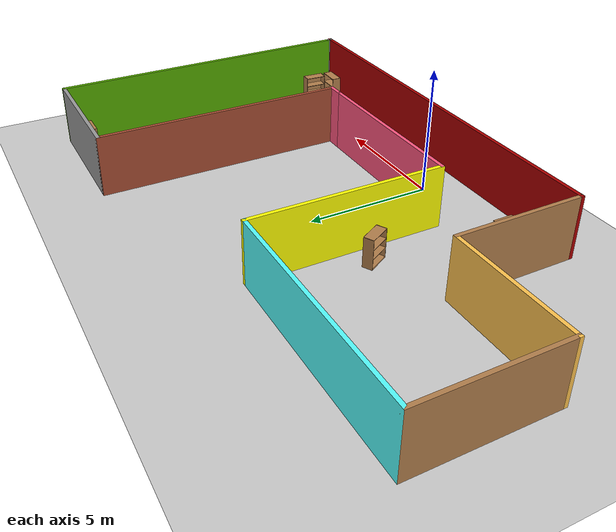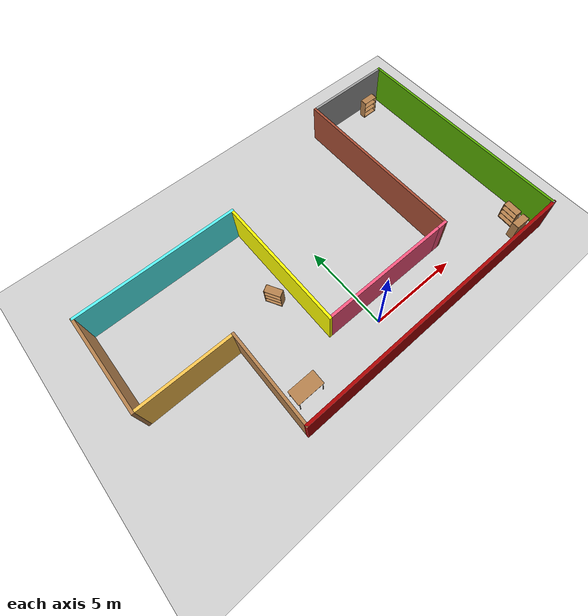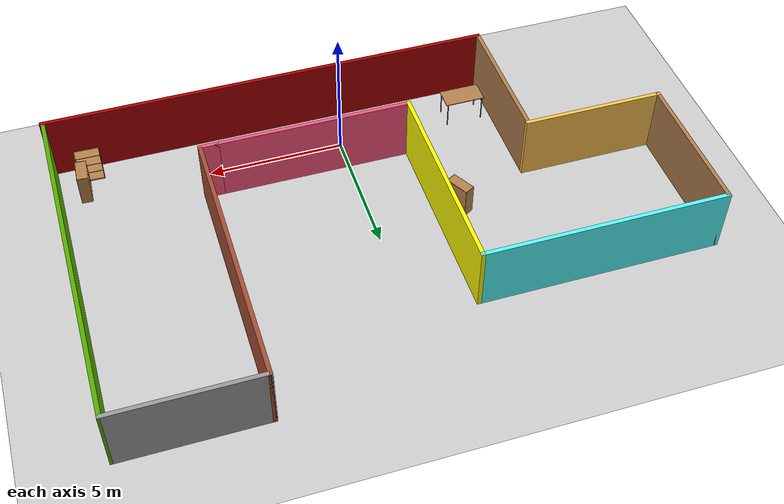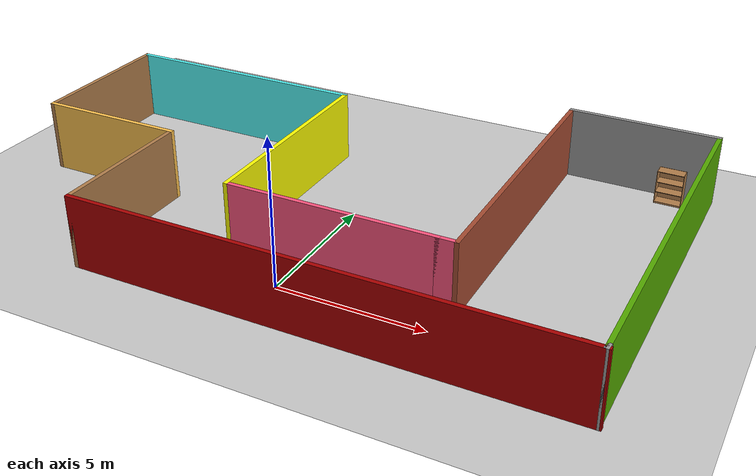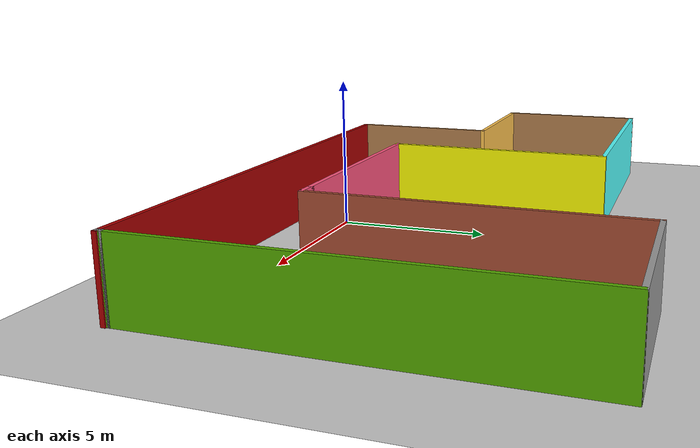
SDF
<sdf version="1.6">
 <world name="default">
  <light name="sun" type="directional">
   <pose>0 0 10 0 -0 0</pose>
   <diffuse>0.8 0.8 0.8 1</diffuse>
   <specular>0.2 0.2 0.2 1</specular>
   <attenuation>
    <range>1000</range>
    <constant>0.9</constant>
    <linear>0.01</linear>
    <quadratic>0.001</quadratic>
   </attenuation>
   <direction>-0.5 0.1 -0.9</direction>
  </light>
  <model name="ground_plane">
   <static>1</static>
   <link name="link">
    <collision name="collision">
     <geometry><plane><normal>0 0 1</normal><size>100 100</size></plane></geometry>
     <surface>
      <contact><collide_bitmask>65535</collide_bitmask></contact>
      <friction><ode><mu>100</mu><mu2>50</mu2></ode></friction>
     </surface>
    </collision>
    <visual name="visual">
     <cast_shadows>0</cast_shadows>
     <geometry><plane><normal>0 0 1</normal><size>100 100</size></plane></geometry>
     <material>
      <script><uri>file://media/materials/scripts/gazebo.material</uri><name>Gazebo/Grey</name></script>
     </material>
    </visual>
   </link>
  </model>
  <gravity>0 0 -9.8</gravity>
  <magnetic_field>6e-06 2.3e-05 -4.2e-05</magnetic_field>
  <atmosphere type="adiabatic"/>
  <physics name="default_physics" default="0" type="ode">
   <max_step_size>0.001</max_step_size>
   <real_time_factor>1</real_time_factor>
   <real_time_update_rate>1000</real_time_update_rate>
  </physics>
  <scene><ambient>0.4 0.4 0.4 1</ambient><background>0.7 0.7 0.7 1</background><shadows>1</shadows></scene>
  <spherical_coordinates>
   <surface_model>EARTH_WGS84</surface_model>
   <latitude_deg>0</latitude_deg>
   <longitude_deg>0</longitude_deg>
   <elevation>0</elevation>
   <heading_deg>0</heading_deg>
  </spherical_coordinates>
  <model name="table">
   <static>1</static>
   <link name="link">
    <collision name="surface">
     <pose>0 0 1 0 -0 0</pose>
     <geometry><box><size>1.5 0.8 0.03</size></box></geometry>
     <surface><friction><ode><mu>0.6</mu><mu2>0.6</mu2></ode></friction></surface>
    </collision>
    <visual name="visual1">
     <pose>0 0 1 0 -0 0</pose>
     <geometry><box><size>1.5 0.8 0.03</size></box></geometry>
     <material>
      <script><uri>file://media/materials/scripts/gazebo.material</uri><name>Gazebo/Wood</name></script>
     </material>
    </visual>
    <collision name="front_left_leg">
     <pose>0.68 0.38 0.5 0 -0 0</pose>
     <geometry><cylinder><radius>0.02</radius><length>1</length></cylinder></geometry>
    </collision>
    <visual name="front_left_leg">
     <pose>0.68 0.38 0.5 0 -0 0</pose>
     <geometry><cylinder><radius>0.02</radius><length>1</length></cylinder></geometry>
     <material>
      <script><uri>file://media/materials/scripts/gazebo.material</uri><name>Gazebo/Grey</name></script>
     </material>
    </visual>
    <collision name="front_right_leg">
     <pose>0.68 -0.38 0.5 0 -0 0</pose>
     <geometry><cylinder><radius>0.02</radius><length>1</length></cylinder></geometry>
    </collision>
    <visual name="front_right_leg">
     <pose>0.68 -0.38 0.5 0 -0 0</pose>
     <geometry><cylinder><radius>0.02</radius><length>1</length></cylinder></geometry>
     <material>
      <script><uri>file://media/materials/scripts/gazebo.material</uri><name>Gazebo/Grey</name></script>
     </material>
    </visual>
    <collision name="back_right_leg">
     <pose>-0.68 -0.38 0.5 0 -0 0</pose>
     <geometry><cylinder><radius>0.02</radius><length>1</length></cylinder></geometry>
    </collision>
    <visual name="back_right_leg">
     <pose>-0.68 -0.38 0.5 0 -0 0</pose>
     <geometry><cylinder><radius>0.02</radius><length>1</length></cylinder></geometry>
     <material>
      <script><uri>file://media/materials/scripts/gazebo.material</uri><name>Gazebo/Grey</name></script>
     </material>
    </visual>
    <collision name="back_left_leg">
     <pose>-0.68 0.38 0.5 0 -0 0</pose>
     <geometry><cylinder><radius>0.02</radius><length>1</length></cylinder></geometry>
    </collision>
    <visual name="back_left_leg">
     <pose>-0.68 0.38 0.5 0 -0 0</pose>
     <geometry><cylinder><radius>0.02</radius><length>1</length></cylinder></geometry>
     <material>
      <script><uri>file://media/materials/scripts/gazebo.material</uri><name>Gazebo/Grey</name></script>
     </material>
    </visual>
   </link>
   <pose>-4.93005 -0.281485 0 0 -0 0</pose>
  </model>
  <model name="bookshelf">
   <static>1</static>
   <link name="link">
    <inertial><mass>1</mass></inertial>
    <collision name="back">
     <pose>0 0.005 0.6 0 -0 0</pose>
     <geometry><box><size>0.9 0.01 1.2</size></box></geometry>
    </collision>
    <visual name="visual1">
     <pose>0 0.005 0.6 0 -0 0</pose>
     <geometry><box><size>0.9 0.01 1.2</size></box></geometry>
     <material>
      <script><uri>file://media/materials/scripts/gazebo.material</uri><name>Gazebo/Wood</name></script>
     </material>
    </visual>
    <collision name="left_side">
     <pose>0.45 -0.195 0.6 0 -0 0</pose>
     <geometry><box><size>0.02 0.4 1.2</size></box></geometry>
    </collision>
    <visual name="visual2">
     <pose>0.45 -0.195 0.6 0 -0 0</pose>
     <geometry><box><size>0.02 0.4 1.2</size></box></geometry>
     <material>
      <script><uri>file://media/materials/scripts/gazebo.material</uri><name>Gazebo/Wood</name></script>
     </material>
    </visual>
    <collision name="right_side">
     <pose>-0.45 -0.195 0.6 0 -0 0</pose>
     <geometry><box><size>0.02 0.4 1.2</size></box></geometry>
    </collision>
    <visual name="visual3">
     <pose>-0.45 -0.195 0.6 0 -0 0</pose>
     <geometry><box><size>0.02 0.4 1.2</size></box></geometry>
     <material>
      <script><uri>file://media/materials/scripts/gazebo.material</uri><name>Gazebo/Wood</name></script>
     </material>
    </visual>
    <collision name="bottom">
     <pose>0 -0.195 0.03 0 -0 0</pose>
     <geometry><box><size>0.88 0.4 0.06</size></box></geometry>
    </collision>
    <visual name="visual4">
     <pose>0 -0.195 0.03 0 -0 0</pose>
     <geometry><box><size>0.88 0.4 0.06</size></box></geometry>
     <material>
      <script><uri>file://media/materials/scripts/gazebo.material</uri><name>Gazebo/Wood</name></script>
     </material>
    </visual>
    <collision name="top">
     <pose>0 -0.195 1.19 0 -0 0</pose>
     <geometry><box><size>0.88 0.4 0.02</size></box></geometry>
    </collision>
    <visual name="visual5">
     <pose>0 -0.195 1.19 0 -0 0</pose>
     <geometry><box><size>0.88 0.4 0.02</size></box></geometry>
     <material>
      <script><uri>file://media/materials/scripts/gazebo.material</uri><name>Gazebo/Wood</name></script>
     </material>
    </visual>
    <collision name="low_shelf">
     <pose>0 -0.195 0.43 0 -0 0</pose>
     <geometry><box><size>0.88 0.4 0.02</size></box></geometry>
    </collision>
    <visual name="visual6">
     <pose>0 -0.195 0.43 0 -0 0</pose>
     <geometry><box><size>0.88 0.4 0.02</size></box></geometry>
     <material>
      <script><uri>file://media/materials/scripts/gazebo.material</uri><name>Gazebo/Wood</name></script>
     </material>
    </visual>
    <collision name="high_shelf">
     <pose>0 -0.195 0.8 0 -0 0</pose>
     <geometry><box><size>0.88 0.4 0.02</size></box></geometry>
    </collision>
    <visual name="visual7">
     <pose>0 -0.195 0.8 0 -0 0</pose>
     <geometry><box><size>0.88 0.4 0.02</size></box></geometry>
     <material>
      <script><uri>file://media/materials/scripts/gazebo.material</uri><name>Gazebo/Wood</name></script>
     </material>
    </visual>
   </link>
   <pose>9.21867 10.815 0 0 -0 0</pose>
  </model>
  <model name="bookshelf_0">
   <static>1</static>
   <link name="link">
    <inertial><mass>1</mass></inertial>
    <collision name="back">
     <pose>0 0.005 0.6 0 -0 0</pose>
     <geometry><box><size>0.9 0.01 1.2</size></box></geometry>
    </collision>
    <visual name="visual1">
     <pose>0 0.005 0.6 0 -0 0</pose>
     <geometry><box><size>0.9 0.01 1.2</size></box></geometry>
     <material>
      <script><uri>file://media/materials/scripts/gazebo.material</uri><name>Gazebo/Wood</name></script>
     </material>
    </visual>
    <collision name="left_side">
     <pose>0.45 -0.195 0.6 0 -0 0</pose>
     <geometry><box><size>0.02 0.4 1.2</size></box></geometry>
    </collision>
    <visual name="visual2">
     <pose>0.45 -0.195 0.6 0 -0 0</pose>
     <geometry><box><size>0.02 0.4 1.2</size></box></geometry>
     <material>
      <script><uri>file://media/materials/scripts/gazebo.material</uri><name>Gazebo/Wood</name></script>
     </material>
    </visual>
    <collision name="right_side">
     <pose>-0.45 -0.195 0.6 0 -0 0</pose>
     <geometry><box><size>0.02 0.4 1.2</size></box></geometry>
    </collision>
    <visual name="visual3">
     <pose>-0.45 -0.195 0.6 0 -0 0</pose>
     <geometry><box><size>0.02 0.4 1.2</size></box></geometry>
     <material>
      <script><uri>file://media/materials/scripts/gazebo.material</uri><name>Gazebo/Wood</name></script>
     </material>
    </visual>
    <collision name="bottom">
     <pose>0 -0.195 0.03 0 -0 0</pose>
     <geometry><box><size>0.88 0.4 0.06</size></box></geometry>
    </collision>
    <visual name="visual4">
     <pose>0 -0.195 0.03 0 -0 0</pose>
     <geometry><box><size>0.88 0.4 0.06</size></box></geometry>
     <material>
      <script><uri>file://media/materials/scripts/gazebo.material</uri><name>Gazebo/Wood</name></script>
     </material>
    </visual>
    <collision name="top">
     <pose>0 -0.195 1.19 0 -0 0</pose>
     <geometry><box><size>0.88 0.4 0.02</size></box></geometry>
    </collision>
    <visual name="visual5">
     <pose>0 -0.195 1.19 0 -0 0</pose>
     <geometry><box><size>0.88 0.4 0.02</size></box></geometry>
     <material>
      <script><uri>file://media/materials/scripts/gazebo.material</uri><name>Gazebo/Wood</name></script>
     </material>
    </visual>
    <collision name="low_shelf">
     <pose>0 -0.195 0.43 0 -0 0</pose>
     <geometry><box><size>0.88 0.4 0.02</size></box></geometry>
    </collision>
    <visual name="visual6">
     <pose>0 -0.195 0.43 0 -0 0</pose>
     <geometry><box><size>0.88 0.4 0.02</size></box></geometry>
     <material>
      <script><uri>file://media/materials/scripts/gazebo.material</uri><name>Gazebo/Wood</name></script>
     </material>
    </visual>
    <collision name="high_shelf">
     <pose>0 -0.195 0.8 0 -0 0</pose>
     <geometry><box><size>0.88 0.4 0.02</size></box></geometry>
    </collision>
    <visual name="visual7">
     <pose>0 -0.195 0.8 0 -0 0</pose>
     <geometry><box><size>0.88 0.4 0.02</size></box></geometry>
     <material>
      <script><uri>file://media/materials/scripts/gazebo.material</uri><name>Gazebo/Wood</name></script>
     </material>
    </visual>
   </link>
   <pose>9.23663 -1.35103 0 0 -0 3.1218</pose>
  </model>
  <model name="bookshelf_1">
   <static>1</static>
   <link name="link">
    <inertial><mass>1</mass></inertial>
    <collision name="back">
     <pose>0 0.005 0.6 0 -0 0</pose>
     <geometry><box><size>0.9 0.01 1.2</size></box></geometry>
    </collision>
    <visual name="visual1">
     <pose>0 0.005 0.6 0 -0 0</pose>
     <geometry><box><size>0.9 0.01 1.2</size></box></geometry>
     <material>
      <script><uri>file://media/materials/scripts/gazebo.material</uri><name>Gazebo/Wood</name></script>
     </material>
    </visual>
    <collision name="left_side">
     <pose>0.45 -0.195 0.6 0 -0 0</pose>
     <geometry><box><size>0.02 0.4 1.2</size></box></geometry>
    </collision>
    <visual name="visual2">
     <pose>0.45 -0.195 0.6 0 -0 0</pose>
     <geometry><box><size>0.02 0.4 1.2</size></box></geometry>
     <material>
      <script><uri>file://media/materials/scripts/gazebo.material</uri><name>Gazebo/Wood</name></script>
     </material>
    </visual>
    <collision name="right_side">
     <pose>-0.45 -0.195 0.6 0 -0 0</pose>
     <geometry><box><size>0.02 0.4 1.2</size></box></geometry>
    </collision>
    <visual name="visual3">
     <pose>-0.45 -0.195 0.6 0 -0 0</pose>
     <geometry><box><size>0.02 0.4 1.2</size></box></geometry>
     <material>
      <script><uri>file://media/materials/scripts/gazebo.material</uri><name>Gazebo/Wood</name></script>
     </material>
    </visual>
    <collision name="bottom">
     <pose>0 -0.195 0.03 0 -0 0</pose>
     <geometry><box><size>0.88 0.4 0.06</size></box></geometry>
    </collision>
    <visual name="visual4">
     <pose>0 -0.195 0.03 0 -0 0</pose>
     <geometry><box><size>0.88 0.4 0.06</size></box></geometry>
     <material>
      <script><uri>file://media/materials/scripts/gazebo.material</uri><name>Gazebo/Wood</name></script>
     </material>
    </visual>
    <collision name="top">
     <pose>0 -0.195 1.19 0 -0 0</pose>
     <geometry><box><size>0.88 0.4 0.02</size></box></geometry>
    </collision>
    <visual name="visual5">
     <pose>0 -0.195 1.19 0 -0 0</pose>
     <geometry><box><size>0.88 0.4 0.02</size></box></geometry>
     <material>
      <script><uri>file://media/materials/scripts/gazebo.material</uri><name>Gazebo/Wood</name></script>
     </material>
    </visual>
    <collision name="low_shelf">
     <pose>0 -0.195 0.43 0 -0 0</pose>
     <geometry><box><size>0.88 0.4 0.02</size></box></geometry>
    </collision>
    <visual name="visual6">
     <pose>0 -0.195 0.43 0 -0 0</pose>
     <geometry><box><size>0.88 0.4 0.02</size></box></geometry>
     <material>
      <script><uri>file://media/materials/scripts/gazebo.material</uri><name>Gazebo/Wood</name></script>
     </material>
    </visual>
    <collision name="high_shelf">
     <pose>0 -0.195 0.8 0 -0 0</pose>
     <geometry><box><size>0.88 0.4 0.02</size></box></geometry>
    </collision>
    <visual name="visual7">
     <pose>0 -0.195 0.8 0 -0 0</pose>
     <geometry><box><size>0.88 0.4 0.02</size></box></geometry>
     <material>
      <script><uri>file://media/materials/scripts/gazebo.material</uri><name>Gazebo/Wood</name></script>
     </material>
    </visual>
   </link>
   <pose>9.75071 -0.372945 0 0 0 -1.62661</pose>
  </model>
  <model name="Untitled">
   <pose>-0.304193 4.70254 0 0 -0 0</pose>
   <link name="Wall_10">
    <collision name="Wall_10_Collision">
     <geometry><box><size>16.75 0.15 2.5</size></box></geometry>
     <pose>0 0 1.25 0 -0 0</pose>
    </collision>
    <visual name="Wall_10_Visual">
     <pose>0 0 1.25 0 -0 0</pose>
     <geometry><box><size>16.75 0.15 2.5</size></box></geometry>
     <material>
      <script><uri>file://media/materials/scripts/gazebo.material</uri><name>Gazebo/Grey</name></script>
      <ambient>0.666667 0 0 1</ambient>
     </material>
     <meta><layer>0</layer></meta>
    </visual>
    <pose>2.55 -6.47265 0 0 -0 0</pose>
   </link>
   <link name="Wall_12">
    <collision name="Wall_12_Collision">
     <geometry><box><size>5.25 0.15 2.5</size></box></geometry>
     <pose>0 0 1.25 0 -0 0</pose>
    </collision>
    <visual name="Wall_12_Visual">
     <pose>0 0 1.25 0 -0 0</pose>
     <geometry><box><size>5.25 0.15 2.5</size></box></geometry>
     <material>
      <script><uri>file://media/materials/scripts/gazebo.material</uri><name>Gazebo/Wood</name></script>
      <ambient>0.996078 0.47451 0.0196078 1</ambient>
     </material>
     <meta><layer>0</layer></meta>
    </visual>
    <pose>-5.75 -3.92265 0 0 -0 1.5708</pose>
   </link>
   <link name="Wall_13">
    <collision name="Wall_13_Collision">
     <geometry><box><size>5.25 0.15 2.5</size></box></geometry>
     <pose>0 0 1.25 0 -0 0</pose>
    </collision>
    <visual name="Wall_13_Visual">
     <pose>0 0 1.25 0 -0 0</pose>
     <geometry><box><size>5.25 0.15 2.5</size></box></geometry>
     <material>
      <script><uri>file://media/materials/scripts/gazebo.material</uri><name>Gazebo/Grey</name></script>
      <ambient>1 0.764706 0.305882 1</ambient>
     </material>
     <meta><layer>0</layer></meta>
    </visual>
    <pose>-8.3 -1.37264 0 0 -0 3.14159</pose>
   </link>
   <link name="Wall_14">
    <collision name="Wall_14_Collision">
     <geometry><box><size>5.5 0.15 2.5</size></box></geometry>
     <pose>0 0 1.25 0 -0 0</pose>
    </collision>
    <visual name="Wall_14_Visual">
     <pose>0 0 1.25 0 -0 0</pose>
     <geometry><box><size>5.5 0.15 2.5</size></box></geometry>
     <material>
      <script><uri>file://media/materials/scripts/gazebo.material</uri><name>Gazebo/Wood</name></script>
      <ambient>0.435294 0.796078 0.67451 1</ambient>
     </material>
     <meta><layer>0</layer></meta>
    </visual>
    <pose>-10.85 1.30235 0 0 -0 1.5708</pose>
   </link>
   <link name="Wall_15">
    <collision name="Wall_15_Collision">
     <geometry><box><size>9 0.15 2.5</size></box></geometry>
     <pose>0 0 1.25 0 -0 0</pose>
    </collision>
    <visual name="Wall_15_Visual">
     <pose>0 0 1.25 0 -0 0</pose>
     <geometry><box><size>9 0.15 2.5</size></box></geometry>
     <material>
      <script><uri>file://media/materials/scripts/gazebo.material</uri><name>Gazebo/Grey</name></script>
      <ambient>0.333333 1 1 1</ambient>
     </material>
     <meta><layer>0</layer></meta>
    </visual>
    <pose>-6.425 3.97735 0 0 -0 0</pose>
   </link>
   <link name="Wall_16">
    <collision name="Wall_16_Collision">
     <geometry><box><size>7.75 0.15 2.5</size></box></geometry>
     <pose>0 0 1.25 0 -0 0</pose>
    </collision>
    <visual name="Wall_16_Visual">
     <pose>0 0 1.25 0 -0 0</pose>
     <geometry><box><size>7.75 0.15 2.5</size></box></geometry>
     <material>
      <script><uri>file://media/materials/scripts/gazebo.material</uri><name>Gazebo/Grey</name></script>
      <ambient>1 1 0 1</ambient>
     </material>
     <meta><layer>0</layer></meta>
    </visual>
    <pose>-2 0.177354 0 0 0 -1.5708</pose>
   </link>
   <link name="Wall_17">
    <collision name="Wall_17_Collision">
     <geometry><box><size>7.25 0.15 2.5</size></box></geometry>
     <pose>0 0 1.25 0 -0 0</pose>
    </collision>
    <visual name="Wall_17_Visual">
     <pose>0 0 1.25 0 -0 0</pose>
     <geometry><box><size>7.25 0.15 2.5</size></box></geometry>
     <material>
      <script><uri>file://media/materials/scripts/gazebo.material</uri><name>Gazebo/Grey</name></script>
      <ambient>1 0.333333 0.498039 1</ambient>
     </material>
     <meta><layer>0</layer></meta>
    </visual>
    <pose>1.55 -3.62264 0 0 -0 0</pose>
   </link>
   <link name="Wall_18">
    <collision name="Wall_18_Collision">
     <geometry><box><size>0.75 0.15 2.5</size></box></geometry>
     <pose>0 0 1.25 0 -0 0</pose>
    </collision>
    <visual name="Wall_18_Visual">
     <pose>0 0 1.25 0 -0 0</pose>
     <geometry><box><size>0.75 0.15 2.5</size></box></geometry>
     <material>
      <script><uri>file://media/materials/scripts/gazebo.material</uri><name>Gazebo/Grey</name></script>
      <ambient>1 0.333333 0.498039 1</ambient>
     </material>
     <meta><layer>0</layer></meta>
    </visual>
    <pose>5.4 -3.62264 0 0 -0 0</pose>
   </link>
   <link name="Wall_19">
    <collision name="Wall_19_Collision">
     <geometry><box><size>10.25 0.15 2.5</size></box></geometry>
     <pose>0 0 1.25 0 -0 0</pose>
    </collision>
    <visual name="Wall_19_Visual">
     <pose>0 0 1.25 0 -0 0</pose>
     <geometry><box><size>10.25 0.15 2.5</size></box></geometry>
     <material>
      <script><uri>file://media/materials/scripts/gazebo.material</uri><name>Gazebo/Bricks</name></script>
      <ambient>0.333333 0.333333 1 1</ambient>
     </material>
     <meta><layer>0</layer></meta>
    </visual>
    <pose>5.7 1.42735 0 0 -0 1.5708</pose>
   </link>
   <link name="Wall_21">
    <collision name="Wall_21_Collision">
     <geometry><box><size>5.25 0.15 2.5</size></box></geometry>
     <pose>0 0 1.25 0 -0 0</pose>
    </collision>
    <visual name="Wall_21_Visual">
     <pose>0 0 1.25 0 -0 0</pose>
     <geometry><box><size>5.25 0.15 2.5</size></box></geometry>
     <material>
      <script><uri>file://media/materials/scripts/gazebo.material</uri><name>Gazebo/Grey</name></script>
      <ambient>1 1 1 1</ambient>
     </material>
     <meta><layer>0</layer></meta>
    </visual>
    <pose>8.25 6.47735 0 0 -0 0</pose>
   </link>
   <link name="Wall_22">
    <collision name="Wall_22_Collision">
     <geometry><box><size>12.9849 0.15 2.5</size></box></geometry>
     <pose>0 0 1.25 0 -0 0</pose>
    </collision>
    <visual name="Wall_22_Visual">
     <pose>0 0 1.25 0 -0 0</pose>
     <geometry><box><size>12.9849 0.15 2.5</size></box></geometry>
     <material>
      <script><uri>file://media/materials/scripts/gazebo.material</uri><name>Gazebo/Grey</name></script>
      <ambient>0.333333 0.666667 0 1</ambient>
     </material>
     <meta><layer>0</layer></meta>
    </visual>
    <pose>10.8038 0.059916 0 0 0 -1.57021</pose>
   </link>
   <link name="Wall_23">
    <collision name="Wall_23_Collision">
     <geometry><box><size>0.265371 0.15 2.5</size></box></geometry>
     <pose>0 0 1.25 0 -0 0</pose>
    </collision>
    <visual name="Wall_23_Visual">
     <pose>0 0 1.25 0 -0 0</pose>
     <geometry><box><size>0.265371 0.15 2.5</size></box></geometry>
     <material>
      <script><uri>file://media/materials/scripts/gazebo.material</uri><name>Gazebo/Grey</name></script>
      <ambient>1 1 1 1</ambient>
     </material>
     <meta><layer>0</layer></meta>
    </visual>
    <pose>10.8038 -6.41508 0 0 0 -1.63638</pose>
   </link>
   <link name="Wall_24">
    <collision name="Wall_24_Collision">
     <geometry><box><size>0.265371 0.15 2.5</size></box></geometry>
     <pose>0 0 1.25 0 -0 0</pose>
    </collision>
    <visual name="Wall_24_Visual">
     <pose>0 0 1.25 0 -0 0</pose>
     <geometry><box><size>0.265371 0.15 2.5</size></box></geometry>
     <material>
      <script><uri>file://media/materials/scripts/gazebo.material</uri><name>Gazebo/Grey</name></script>
      <ambient>1 1 1 1</ambient>
     </material>
     <meta><layer>0</layer></meta>
    </visual>
    <pose>10.8038 -6.41508 0 0 -0 1.50521</pose>
   </link>
   <static>1</static>
  </model>
  <model name="bookshelf_clone">
   <static>1</static>
   <link name="link">
    <inertial><mass>1</mass></inertial>
    <collision name="back">
     <pose>0 0.005 0.6 0 -0 0</pose>
     <geometry><box><size>0.9 0.01 1.2</size></box></geometry>
    </collision>
    <visual name="visual1">
     <pose>0 0.005 0.6 0 -0 0</pose>
     <geometry><box><size>0.9 0.01 1.2</size></box></geometry>
     <material>
      <script><uri>file://media/materials/scripts/gazebo.material</uri><name>Gazebo/Wood</name></script>
     </material>
    </visual>
    <collision name="left_side">
     <pose>0.45 -0.195 0.6 0 -0 0</pose>
     <geometry><box><size>0.02 0.4 1.2</size></box></geometry>
    </collision>
    <visual name="visual2">
     <pose>0.45 -0.195 0.6 0 -0 0</pose>
     <geometry><box><size>0.02 0.4 1.2</size></box></geometry>
     <material>
      <script><uri>file://media/materials/scripts/gazebo.material</uri><name>Gazebo/Wood</name></script>
     </material>
    </visual>
    <collision name="right_side">
     <pose>-0.45 -0.195 0.6 0 -0 0</pose>
     <geometry><box><size>0.02 0.4 1.2</size></box></geometry>
    </collision>
    <visual name="visual3">
     <pose>-0.45 -0.195 0.6 0 -0 0</pose>
     <geometry><box><size>0.02 0.4 1.2</size></box></geometry>
     <material>
      <script><uri>file://media/materials/scripts/gazebo.material</uri><name>Gazebo/Wood</name></script>
     </material>
    </visual>
    <collision name="bottom">
     <pose>0 -0.195 0.03 0 -0 0</pose>
     <geometry><box><size>0.88 0.4 0.06</size></box></geometry>
    </collision>
    <visual name="visual4">
     <pose>0 -0.195 0.03 0 -0 0</pose>
     <geometry><box><size>0.88 0.4 0.06</size></box></geometry>
     <material>
      <script><uri>file://media/materials/scripts/gazebo.material</uri><name>Gazebo/Wood</name></script>
     </material>
    </visual>
    <collision name="top">
     <pose>0 -0.195 1.19 0 -0 0</pose>
     <geometry><box><size>0.88 0.4 0.02</size></box></geometry>
    </collision>
    <visual name="visual5">
     <pose>0 -0.195 1.19 0 -0 0</pose>
     <geometry><box><size>0.88 0.4 0.02</size></box></geometry>
     <material>
      <script><uri>file://media/materials/scripts/gazebo.material</uri><name>Gazebo/Wood</name></script>
     </material>
    </visual>
    <collision name="low_shelf">
     <pose>0 -0.195 0.43 0 -0 0</pose>
     <geometry><box><size>0.88 0.4 0.02</size></box></geometry>
    </collision>
    <visual name="visual6">
     <pose>0 -0.195 0.43 0 -0 0</pose>
     <geometry><box><size>0.88 0.4 0.02</size></box></geometry>
     <material>
      <script><uri>file://media/materials/scripts/gazebo.material</uri><name>Gazebo/Wood</name></script>
     </material>
    </visual>
    <collision name="high_shelf">
     <pose>0 -0.195 0.8 0 -0 0</pose>
     <geometry><box><size>0.88 0.4 0.02</size></box></geometry>
    </collision>
    <visual name="visual7">
     <pose>0 -0.195 0.8 0 -0 0</pose>
     <geometry><box><size>0.88 0.4 0.02</size></box></geometry>
     <material>
      <script><uri>file://media/materials/scripts/gazebo.material</uri><name>Gazebo/Wood</name></script>
     </material>
    </visual>
   </link>
   <pose>-3.0156 4.40986 0 0 0 -1.0658</pose>
  </model>
 </world>
</sdf>
